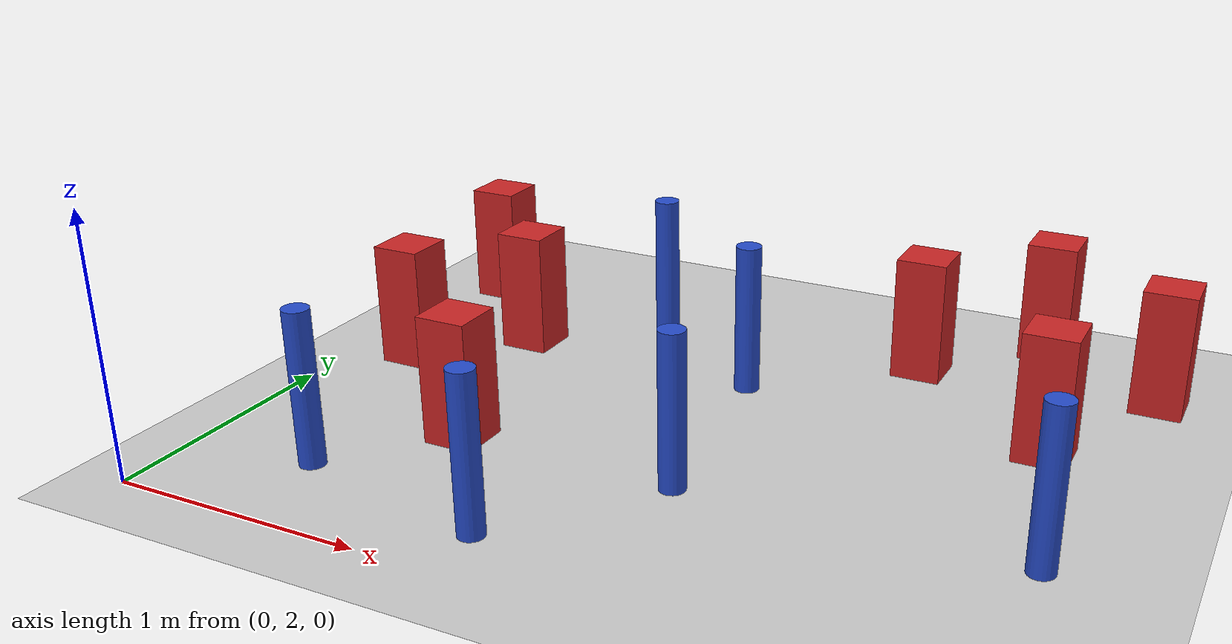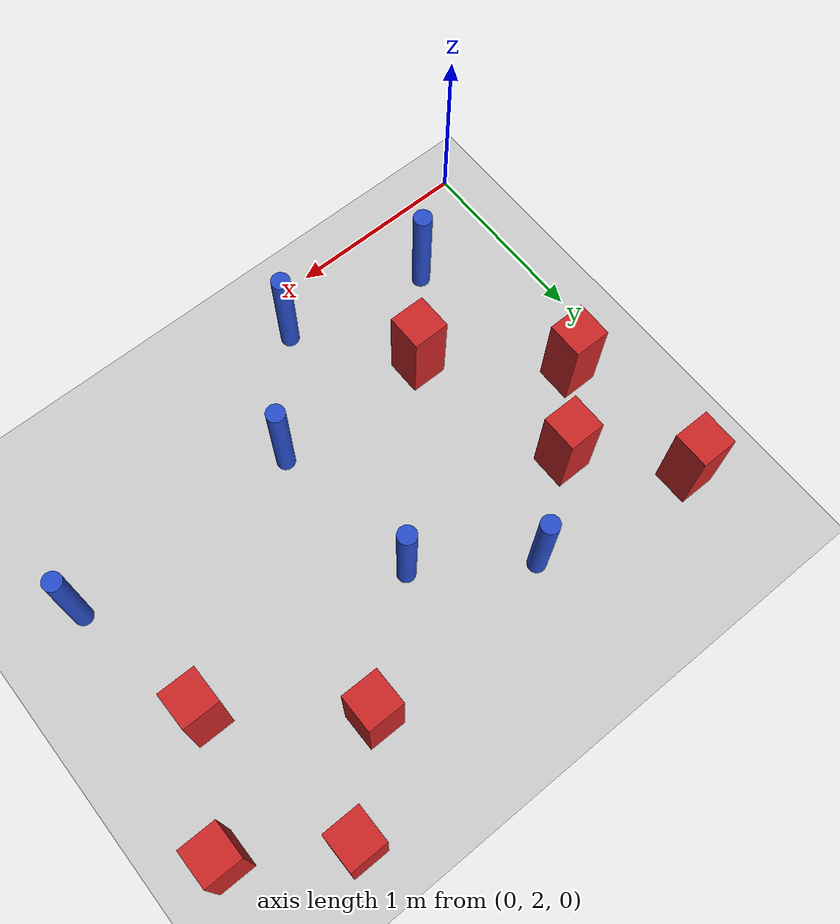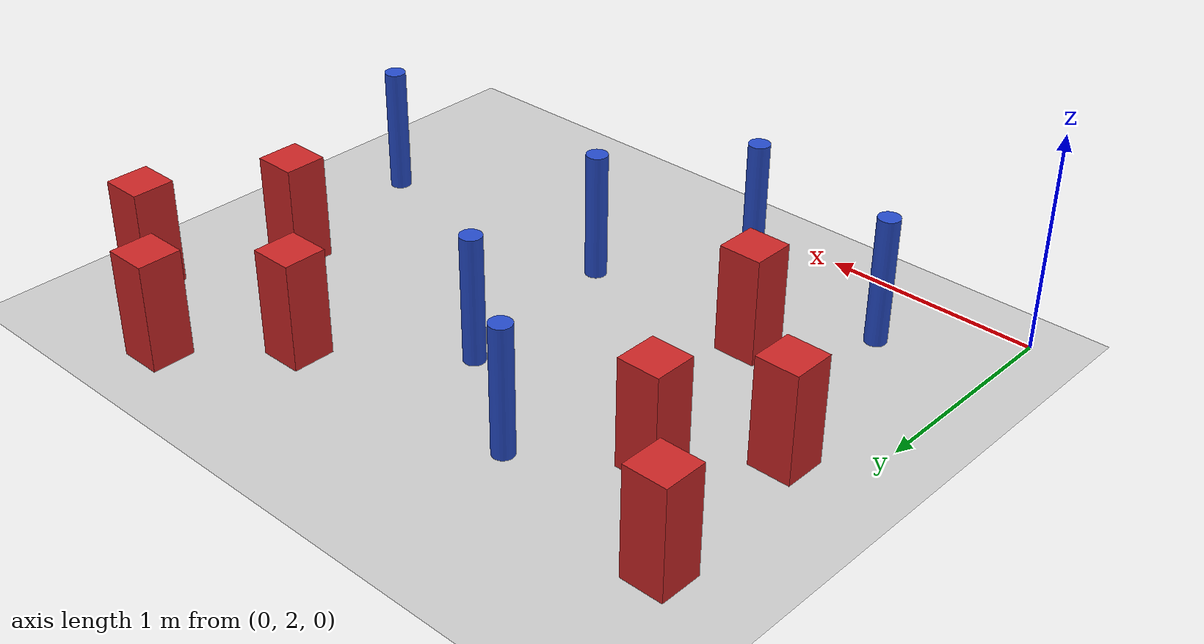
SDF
<sdf version="1.6">
 <world name="default">
  <model name="ground_plane">
   <static>1</static>
   <link name="link">
    <collision name="collision">
     <geometry><plane><normal>0 0 1</normal><size>100 100</size></plane></geometry>
     <surface><friction><ode><mu>100</mu><mu2>50</mu2></ode></friction></surface>
    </collision>
    <visual name="visual">
     <cast_shadows>0</cast_shadows>
     <geometry><plane><normal>0 0 1</normal><size>100 100</size></plane></geometry>
     <material>
      <ambient>1.0 1.0 1.0 1.0</ambient>
      <diffuse>0.8 0.8 0.8 1.0</diffuse>
      <specular>0.01 0.01 0.01 1.000000</specular>
     </material>
    </visual>
   </link>
  </model>
  <model name="pole_obstacle25">
   <static>true</static>
   <pose>1.74162384043 2.80790043297 -3.09024884793e-07 -7.19054271912e-07 -2.11315075132e-07 -1.93935509263e-07</pose>
   <link name="link">
    <pose>0 0 0.3 0 -0 0</pose>
    <inertial>
     <mass>1</mass>
     <inertia><ixx>0.145833</ixx><ixy>0</ixy><ixz>0</ixz><iyy>0.145833</iyy><iyz>0</iyz><izz>0.125</izz></inertia>
    </inertial>
    <collision name="collision">
     <geometry><cylinder><radius>0.05</radius><length>.6</length></cylinder></geometry>
    </collision>
    <visual name="visual">
     <geometry><cylinder><radius>0.05</radius><length>.6</length></cylinder></geometry>
     <material>
      <script><name>Gazebo/Blue</name><uri>file://media/materials/scripts/gazebo.material</uri></script>
     </material>
    </visual>
   </link>
  </model>
  <model name="pole_obstacle26">
   <static>true</static>
   <pose>1.09740934956 4.03963269576 -3.09024884793e-07 -7.19054271912e-07 -2.11315075135e-07 -1.93935509266e-07</pose>
   <link name="link">
    <pose>0 0 0.3 0 -0 0</pose>
    <inertial>
     <mass>1</mass>
     <inertia><ixx>0.145833</ixx><ixy>0</ixy><ixz>0</ixz><iyy>0.145833</iyy><iyz>0</iyz><izz>0.125</izz></inertia>
    </inertial>
    <collision name="collision">
     <geometry><cylinder><radius>0.05</radius><length>.6</length></cylinder></geometry>
    </collision>
    <visual name="visual">
     <geometry><cylinder><radius>0.05</radius><length>.6</length></cylinder></geometry>
     <material>
      <script><name>Gazebo/Blue</name><uri>file://media/materials/scripts/gazebo.material</uri></script>
     </material>
    </visual>
   </link>
  </model>
  <model name="square_post_obstacle31">
   <static>true</static>
   <pose>0.866396240107 2.81461666955 -4.36207812815e-07 3.75137919937e-06 9.77721102514e-07 2.47381364184e-05</pose>
   <link name="link">
    <pose>0 0 0.25 0 -0 0</pose>
    <inertial>
     <mass>100</mass>
     <inertia>
      <ixx>0.166667</ixx>
      <ixy>0</ixy>
      <ixz>0</ixz>
      <iyy>0.166667</iyy>
      <iyz>0</iyz>
      <izz>0.166667</izz>
     </inertia>
    </inertial>
    <collision name="collision"><geometry><box><size>.2 .2 .5</size></box></geometry></collision>
    <visual name="visual">
     <geometry><box><size>.2 .2 .5</size></box></geometry>
     <material>
      <script><name>Gazebo/Red</name><uri>file://media/materials/scripts/gazebo.material</uri></script>
     </material>
    </visual>
   </link>
  </model>
  <model name="square_post_obstacle34">
   <static>true</static>
   <pose>3.13941664115 4.21430315404 -4.36207812815e-07 3.75137919937e-06 9.77721102514e-07 2.47381364184e-05</pose>
   <link name="link">
    <pose>0 0 0.25 0 -0 0</pose>
    <inertial>
     <mass>100</mass>
     <inertia>
      <ixx>0.166667</ixx>
      <ixy>0</ixy>
      <ixz>0</ixz>
      <iyy>0.166667</iyy>
      <iyz>0</iyz>
      <izz>0.166667</izz>
     </inertia>
    </inertial>
    <collision name="collision"><geometry><box><size>.2 .2 .5</size></box></geometry></collision>
    <visual name="visual">
     <geometry><box><size>.2 .2 .5</size></box></geometry>
     <material>
      <script><name>Gazebo/Red</name><uri>file://media/materials/scripts/gazebo.material</uri></script>
     </material>
    </visual>
   </link>
  </model>
  <model name="pole_obstacle68">
   <static>true</static>
   <pose>1.29208701074 2.24475795163 -3.09024884793e-07 -7.19054271912e-07 -2.11315075132e-07 -1.93935509263e-07</pose>
   <link name="link">
    <pose>0 0 0.3 0 -0 0</pose>
    <inertial>
     <mass>1</mass>
     <inertia><ixx>0.145833</ixx><ixy>0</ixy><ixz>0</ixz><iyy>0.145833</iyy><iyz>0</iyz><izz>0.125</izz></inertia>
    </inertial>
    <collision name="collision">
     <geometry><cylinder><radius>0.05</radius><length>.6</length></cylinder></geometry>
    </collision>
    <visual name="visual">
     <geometry><cylinder><radius>0.05</radius><length>.6</length></cylinder></geometry>
     <material>
      <script><name>Gazebo/Blue</name><uri>file://media/materials/scripts/gazebo.material</uri></script>
     </material>
    </visual>
   </link>
  </model>
  <model name="square_post_obstacle105">
   <static>true</static>
   <pose>2.62913756377 4.54352953189 -4.36207812815e-07 3.75137919937e-06 9.77721102514e-07 2.47381364184e-05</pose>
   <link name="link">
    <pose>0 0 0.25 0 -0 0</pose>
    <inertial>
     <mass>100</mass>
     <inertia>
      <ixx>0.166667</ixx>
      <ixy>0</ixy>
      <ixz>0</ixz>
      <iyy>0.166667</iyy>
      <iyz>0</iyz>
      <izz>0.166667</izz>
     </inertia>
    </inertial>
    <collision name="collision"><geometry><box><size>.2 .2 .5</size></box></geometry></collision>
    <visual name="visual">
     <geometry><box><size>.2 .2 .5</size></box></geometry>
     <material>
      <script><name>Gazebo/Red</name><uri>file://media/materials/scripts/gazebo.material</uri></script>
     </material>
    </visual>
   </link>
  </model>
  <model name="square_post_obstacle112">
   <static>true</static>
   <pose>0.200137669251 4.16412406503 -4.36207812815e-07 3.75137919937e-06 9.77721102514e-07 2.47381364184e-05</pose>
   <link name="link">
    <pose>0 0 0.25 0 -0 0</pose>
    <inertial>
     <mass>100</mass>
     <inertia>
      <ixx>0.166667</ixx>
      <ixy>0</ixy>
      <ixz>0</ixz>
      <iyy>0.166667</iyy>
      <iyz>0</iyz>
      <izz>0.166667</izz>
     </inertia>
    </inertial>
    <collision name="collision"><geometry><box><size>.2 .2 .5</size></box></geometry></collision>
    <visual name="visual">
     <geometry><box><size>.2 .2 .5</size></box></geometry>
     <material>
      <script><name>Gazebo/Red</name><uri>file://media/materials/scripts/gazebo.material</uri></script>
     </material>
    </visual>
   </link>
  </model>
  <model name="pole_obstacle131">
   <static>true</static>
   <pose>3.01049475938 2.84337319833 -3.09024884793e-07 -7.19054271912e-07 -2.11315075144e-07 -1.93935509271e-07</pose>
   <link name="link">
    <pose>0 0 0.3 0 -0 0</pose>
    <inertial>
     <mass>1</mass>
     <inertia><ixx>0.145833</ixx><ixy>0</ixy><ixz>0</ixz><iyy>0.145833</iyy><iyz>0</iyz><izz>0.125</izz></inertia>
    </inertial>
    <collision name="collision">
     <geometry><cylinder><radius>0.05</radius><length>.6</length></cylinder></geometry>
    </collision>
    <visual name="visual">
     <geometry><cylinder><radius>0.05</radius><length>.6</length></cylinder></geometry>
     <material>
      <script><name>Gazebo/Blue</name><uri>file://media/materials/scripts/gazebo.material</uri></script>
     </material>
    </visual>
   </link>
  </model>
  <model name="square_post_obstacle143">
   <static>true</static>
   <pose>0.27302591059 3.34873600931 -4.36207812815e-07 3.75137919937e-06 9.77721102514e-07 2.47381364184e-05</pose>
   <link name="link">
    <pose>0 0 0.25 0 -0 0</pose>
    <inertial>
     <mass>100</mass>
     <inertia>
      <ixx>0.166667</ixx>
      <ixy>0</ixy>
      <ixz>0</ixz>
      <iyy>0.166667</iyy>
      <iyz>0</iyz>
      <izz>0.166667</izz>
     </inertia>
    </inertial>
    <collision name="collision"><geometry><box><size>.2 .2 .5</size></box></geometry></collision>
    <visual name="visual">
     <geometry><box><size>.2 .2 .5</size></box></geometry>
     <material>
      <script><name>Gazebo/Red</name><uri>file://media/materials/scripts/gazebo.material</uri></script>
     </material>
    </visual>
   </link>
  </model>
  <model name="pole_obstacle154">
   <static>true</static>
   <pose>1.63765587391 3.66946644791 -3.09024884793e-07 -7.19054271912e-07 -2.11315075132e-07 -1.93935509263e-07</pose>
   <link name="link">
    <pose>0 0 0.3 0 -0 0</pose>
    <inertial>
     <mass>1</mass>
     <inertia><ixx>0.145833</ixx><ixy>0</ixy><ixz>0</ixz><iyy>0.145833</iyy><iyz>0</iyz><izz>0.125</izz></inertia>
    </inertial>
    <collision name="collision">
     <geometry><cylinder><radius>0.05</radius><length>.6</length></cylinder></geometry>
    </collision>
    <visual name="visual">
     <geometry><cylinder><radius>0.05</radius><length>.6</length></cylinder></geometry>
     <material>
      <script><name>Gazebo/Blue</name><uri>file://media/materials/scripts/gazebo.material</uri></script>
     </material>
    </visual>
   </link>
  </model>
  <model name="pole_obstacle160">
   <static>true</static>
   <pose>0.505816260326 2.40201638126 -3.09024884793e-07 -7.19054271912e-07 -2.11315075126e-07 -1.93935509261e-07</pose>
   <link name="link">
    <pose>0 0 0.3 0 -0 0</pose>
    <inertial>
     <mass>1</mass>
     <inertia><ixx>0.145833</ixx><ixy>0</ixy><ixz>0</ixz><iyy>0.145833</iyy><iyz>0</iyz><izz>0.125</izz></inertia>
    </inertial>
    <collision name="collision">
     <geometry><cylinder><radius>0.05</radius><length>.6</length></cylinder></geometry>
    </collision>
    <visual name="visual">
     <geometry><cylinder><radius>0.05</radius><length>.6</length></cylinder></geometry>
     <material>
      <script><name>Gazebo/Blue</name><uri>file://media/materials/scripts/gazebo.material</uri></script>
     </material>
    </visual>
   </link>
  </model>
  <model name="square_post_obstacle186">
   <static>true</static>
   <pose>2.21092212361 4.13830855268 -4.36207812815e-07 3.75137919937e-06 9.77721102514e-07 2.47381364184e-05</pose>
   <link name="link">
    <pose>0 0 0.25 0 -0 0</pose>
    <inertial>
     <mass>100</mass>
     <inertia>
      <ixx>0.166667</ixx>
      <ixy>0</ixy>
      <ixz>0</ixz>
      <iyy>0.166667</iyy>
      <iyz>0</iyz>
      <izz>0.166667</izz>
     </inertia>
    </inertial>
    <collision name="collision"><geometry><box><size>.2 .2 .5</size></box></geometry></collision>
    <visual name="visual">
     <geometry><box><size>.2 .2 .5</size></box></geometry>
     <material>
      <script><name>Gazebo/Red</name><uri>file://media/materials/scripts/gazebo.material</uri></script>
     </material>
    </visual>
   </link>
  </model>
  <model name="square_post_obstacle214">
   <static>true</static>
   <pose>0.631939055196 3.70445997467 -4.36207812815e-07 3.75137919937e-06 9.77721102514e-07 2.47381364184e-05</pose>
   <link name="link">
    <pose>0 0 0.25 0 -0 0</pose>
    <inertial>
     <mass>100</mass>
     <inertia>
      <ixx>0.166667</ixx>
      <ixy>0</ixy>
      <ixz>0</ixz>
      <iyy>0.166667</iyy>
      <iyz>0</iyz>
      <izz>0.166667</izz>
     </inertia>
    </inertial>
    <collision name="collision"><geometry><box><size>.2 .2 .5</size></box></geometry></collision>
    <visual name="visual">
     <geometry><box><size>.2 .2 .5</size></box></geometry>
     <material>
      <script><name>Gazebo/Red</name><uri>file://media/materials/scripts/gazebo.material</uri></script>
     </material>
    </visual>
   </link>
  </model>
  <model name="square_post_obstacle228">
   <static>true</static>
   <pose>2.8346900552 3.62348997467 -4.36207812815e-07 3.75137919937e-06 9.77721102514e-07 2.47381364184e-05</pose>
   <link name="link">
    <pose>0 0 0.25 0 -0 0</pose>
    <inertial>
     <mass>100</mass>
     <inertia>
      <ixx>0.166667</ixx>
      <ixy>0</ixy>
      <ixz>0</ixz>
      <iyy>0.166667</iyy>
      <iyz>0</iyz>
      <izz>0.166667</izz>
     </inertia>
    </inertial>
    <collision name="collision"><geometry><box><size>.2 .2 .5</size></box></geometry></collision>
    <visual name="visual">
     <geometry><box><size>.2 .2 .5</size></box></geometry>
     <material>
      <script><name>Gazebo/Red</name><uri>file://media/materials/scripts/gazebo.material</uri></script>
     </material>
    </visual>
   </link>
  </model>
 </world>
</sdf>
